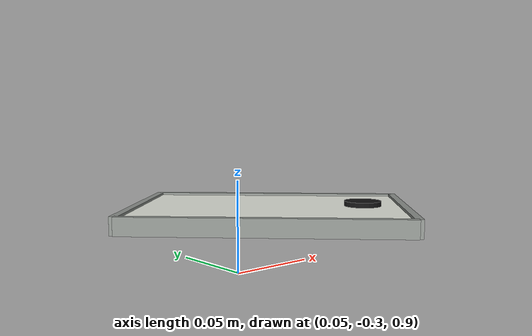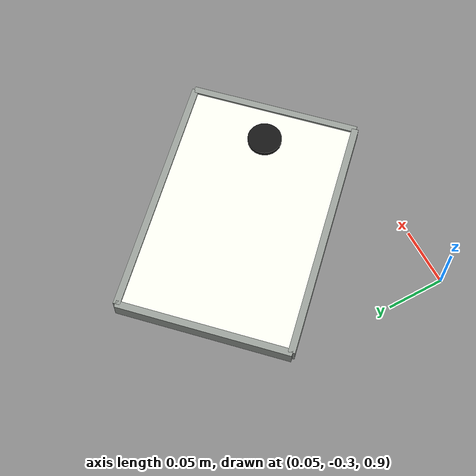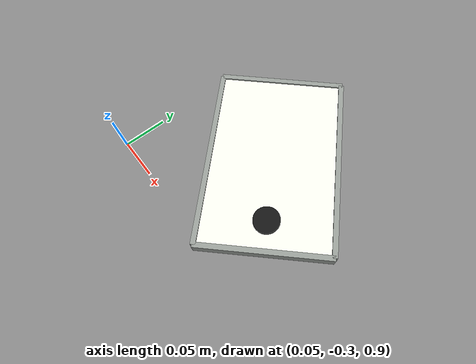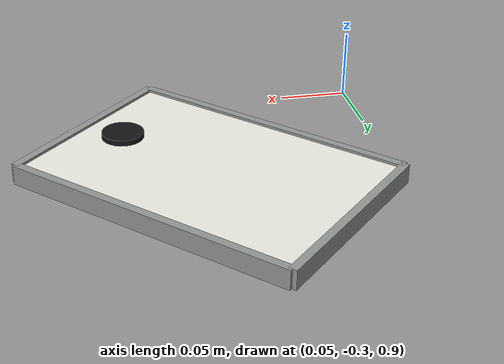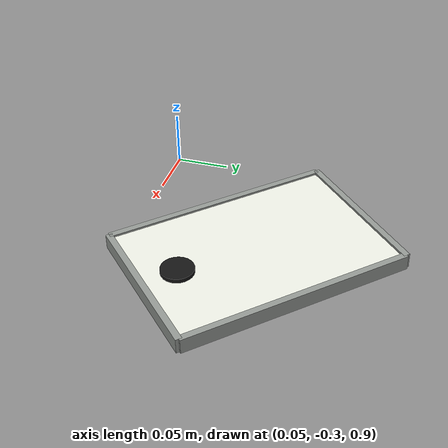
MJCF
<mujoco model="custom_reference_white_cutting_board_stove_flat">
  <asset>
    <material name="board" rgba="0.93 0.94 0.90 1"/>
    <material name="edge" rgba="0.58 0.60 0.58 1"/>
    <material name="handle_mark" rgba="0.08 0.08 0.08 1"/>
  </asset>
  <worldbody>
    <body>
      <body name="object" pos="0.1800 -0.1800 0.8600" quat="0.92387956 0 0 -0.38268336">
        <geom name="board_body" type="box" size="0.105 0.072 0.006" pos="0 0 0.046" material="board" group="1" contype="0" conaffinity="0"/>
        <geom name="edge_front" type="box" size="0.108 0.003 0.007" pos="0 -0.074 0.047" material="edge" group="1" contype="0" conaffinity="0"/>
        <geom name="edge_back" type="box" size="0.108 0.003 0.007" pos="0 0.074 0.047" material="edge" group="1" contype="0" conaffinity="0"/>
        <geom name="edge_left" type="box" size="0.003 0.075 0.007" pos="-0.108 0 0.047" material="edge" group="1" contype="0" conaffinity="0"/>
        <geom name="edge_right" type="box" size="0.003 0.075 0.007" pos="0.108 0 0.047" material="edge" group="1" contype="0" conaffinity="0"/>
        <geom name="handle_mark" type="cylinder" size="0.015 0.002" pos="0.075 0 0.055" material="handle_mark" group="1" contype="0" conaffinity="0"/>
      </body>
      <site name="bottom_site" pos="0 0 0" size="0.005" rgba="0 0 0 0"/>
      <site name="top_site" pos="0 0 0.058" size="0.005" rgba="0 0 0 0"/>
      <site name="horizontal_radius_site" pos="0.120 0.088 0.030" size="0.005" rgba="0 0 0 0"/>
    </body>
  </worldbody>
</mujoco>
